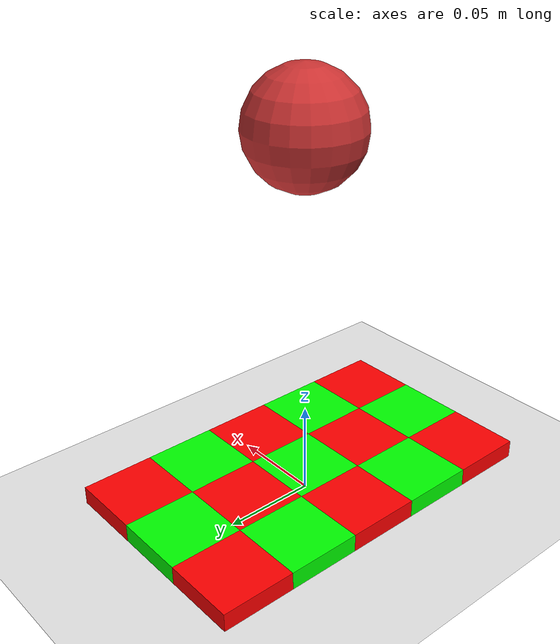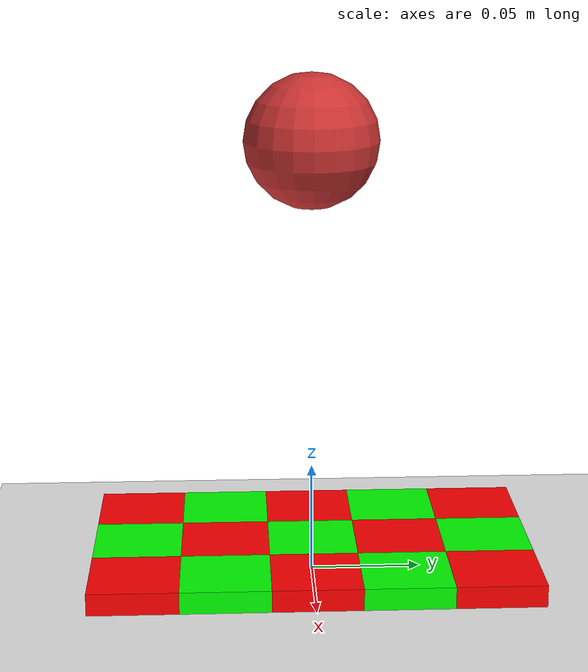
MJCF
<mujoco model="ball_on_sensor">
  <compiler angle="degree" coordinate="local"/>
  <option gravity="0 0 -9.81" timestep="0.002"/>

  <default>
    <geom type="box" size="0.02 0.02 0.005"
          rgba="0.2 0.6 0.8 1"
          condim="3"
          friction="1 0.005 0.0001"/>
  </default>

  <worldbody>
    <!-- Ground -->
    <geom name="ground" type="plane" size="1 1 0.1" rgba="0.9 0.9 0.9 1"/>

    <!-- Include sensor pad array -->
    <include file="presstip_foot.xml"/>

    <!-- Ball / probe -->
    <body name="probe" pos="0 0 0.2">
      <joint type="free"/>
      <geom type="sphere" size="0.03" rgba="0.8 0.2 0.2 1" mass="0.5"/>
    </body>
  </worldbody>
</mujoco>

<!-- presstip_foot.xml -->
<mujoco model="force_pad_array">
    <!-- Pad array -->
    <body name="pad_array" pos="0 0 0.01">

        <!-- Row 0 -->
        <geom name="pad_0_0" pos="-0.04 -0.08 0" rgba="1 0 0 1"/>
        <geom name="pad_0_1" pos="-0.04 -0.04 0" rgba="0 1 0 1"/>
        <geom name="pad_0_2" pos="-0.04 0.00 0" rgba="1 0 0 1"/>
        <geom name="pad_0_3" pos="-0.04 0.04 0" rgba="0 1 0 1"/>
        <geom name="pad_0_4" pos="-0.04 0.08 0" rgba="1 0 0 1"/>

        <!-- Row 1 -->
        <geom name="pad_1_0" pos="0.00 -0.08 0" rgba="0 1 0 1"/>
        <geom name="pad_1_1" pos="0.00 -0.04 0" rgba="1 0 0 1"/>
        <geom name="pad_1_2" pos="0.00 0.00 0" rgba="0 1 0 1"/>
        <geom name="pad_1_3" pos="0.00 0.04 0" rgba="1 0 0 1"/>
        <geom name="pad_1_4" pos="0.00 0.08 0" rgba="0 1 0 1"/>

        <!-- Row 2 -->
        <geom name="pad_2_0" pos="0.04 -0.08 0" rgba="1 0 0 1"/>
        <geom name="pad_2_1" pos="0.04 -0.04 0" rgba="0 1 0 1"/>
        <geom name="pad_2_2" pos="0.04 0.00 0" rgba="1 0 0 1"/>
        <geom name="pad_2_3" pos="0.04 0.04 0" rgba="0 1 0 1"/>
        <geom name="pad_2_4" pos="0.04 0.08 0" rgba="1 0 0 1"/>

        </body>

</mujoco>
